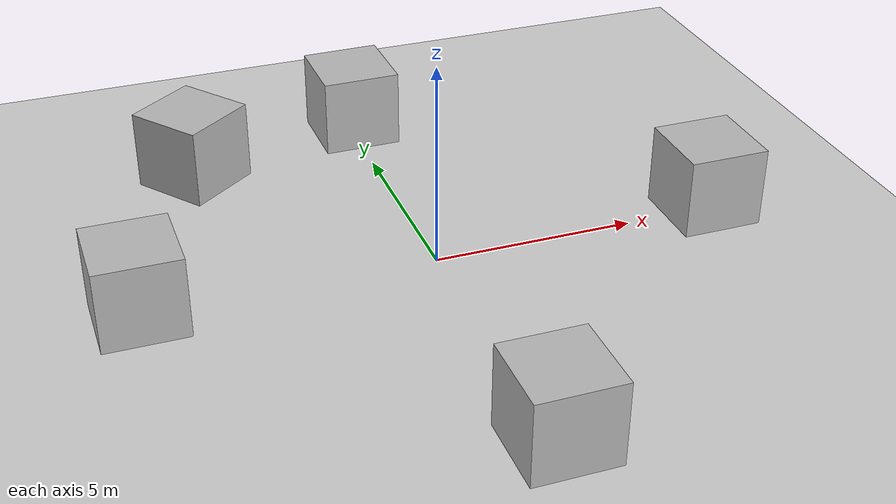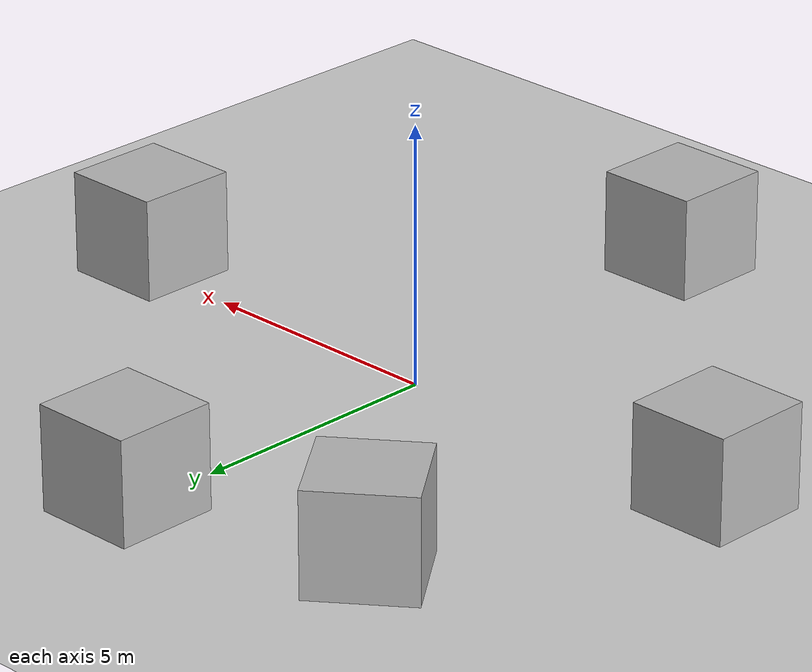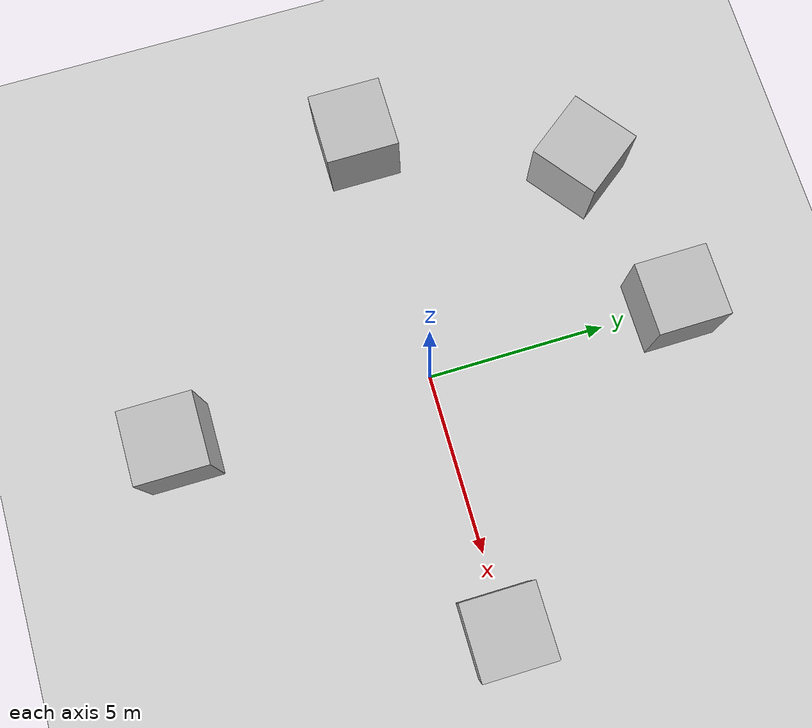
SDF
<sdf version="1.7">
 <world name="default">
  <light name="sun" type="directional">
   <pose>0 0 10 0 -0 0</pose>
   <diffuse>0.8 0.8 0.8 1</diffuse>
   <specular>0.2 0.2 0.2 1</specular>
   <attenuation>
    <range>1000</range>
    <constant>0.9</constant>
    <linear>0.01</linear>
    <quadratic>0.001</quadratic>
   </attenuation>
   <direction>-0.5 0.1 -0.9</direction>
   <spot><inner_angle>0</inner_angle><outer_angle>0</outer_angle><falloff>0</falloff></spot>
  </light>
  <model name="ground_plane">
   <static>1</static>
   <link name="link">
    <collision name="collision">
     <geometry><plane><normal>0 0 1</normal><size>100 100</size></plane></geometry>
     <surface>
      <contact><collide_bitmask>65535</collide_bitmask></contact>
      <friction><ode><mu>100</mu><mu2>50</mu2></ode></friction>
     </surface>
    </collision>
    <visual name="visual">
     <cast_shadows>0</cast_shadows>
     <geometry><plane><normal>0 0 1</normal><size>100 100</size></plane></geometry>
     <material>
      <script><uri>file://media/materials/scripts/gazebo.material</uri><name>Gazebo/Grey</name></script>
     </material>
    </visual>
   </link>
  </model>
  <gravity>0 0 -9.8</gravity>
  <magnetic_field>6e-06 2.3e-05 -4.2e-05</magnetic_field>
  <atmosphere type="adiabatic"/>
  <physics type="ode">
   <max_step_size>0.001</max_step_size>
   <real_time_factor>1</real_time_factor>
   <real_time_update_rate>1000</real_time_update_rate>
  </physics>
  <scene><ambient>0.4 0.4 0.4 1</ambient><background>0.7 0.7 0.7 1</background><shadows>1</shadows></scene>
  <audio><device>default</device></audio>
  <spherical_coordinates>
   <surface_model>EARTH_WGS84</surface_model>
   <latitude_deg>0</latitude_deg>
   <longitude_deg>0</longitude_deg>
   <elevation>0</elevation>
   <heading_deg>0</heading_deg>
  </spherical_coordinates>
  <model name="maker1">
   <static>1</static>
   <link name="link">
    <visual name="visual"><geometry><mesh><uri>model://maker1/meshes/maker1.obj</uri></mesh></geometry></visual>
    <collision name="collision">
     <geometry><mesh><uri>model://maker1/meshes/maker1.obj</uri></mesh></geometry>
    </collision>
   </link>
   <pose>7.02281 -0.062913 1.00688 0 -0 1.57292</pose>
  </model>
  <model name="maker2">
   <static>1</static>
   <link name="link">
    <visual name="visual"><geometry><mesh><uri>model://maker2/meshes/maker2.obj</uri></mesh></geometry></visual>
    <collision name="collision">
     <geometry><mesh><uri>model://maker2/meshes/maker2.obj</uri></mesh></geometry>
    </collision>
   </link>
   <pose>-0.003168 -7.05287 1.01 0 -0 0</pose>
  </model>
  <model name="maker3">
   <static>1</static>
   <link name="link">
    <visual name="visual"><geometry><mesh><uri>model://maker3/meshes/maker3.obj</uri></mesh></geometry></visual>
    <collision name="collision">
     <geometry><mesh><uri>model://maker3/meshes/maker3.obj</uri></mesh></geometry>
    </collision>
   </link>
   <pose>-7.00863 -0.096882 1.00874 0 0 -1.56914</pose>
  </model>
  <model name="maker4">
   <static>1</static>
   <link name="link">
    <visual name="visual"><geometry><mesh><uri>model://maker4/meshes/maker4.obj</uri></mesh></geometry></visual>
    <collision name="collision">
     <geometry><mesh><uri>model://maker4/meshes/maker4.obj</uri></mesh></geometry>
    </collision>
   </link>
   <pose>0.014108 6.89972 0.995579 0 0 -3.13188</pose>
  </model>
  <model name="maker5">
   <static>1</static>
   <link name="link">
    <visual name="visual"><geometry><mesh><uri>model://maker5/meshes/maker5.obj</uri></mesh></geometry></visual>
    <collision name="collision">
     <geometry><mesh><uri>model://maker5/meshes/maker5.obj</uri></mesh></geometry>
    </collision>
   </link>
   <pose>-4.56977 5.71366 1.01195 0 0 -2.49128</pose>
  </model>
 </world>
</sdf>
